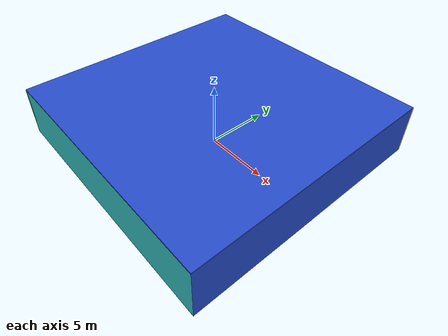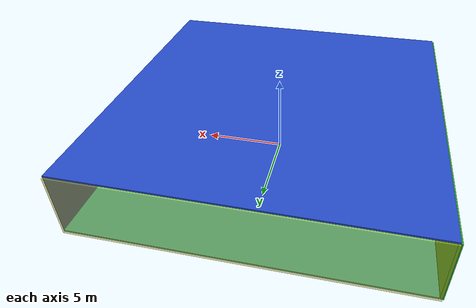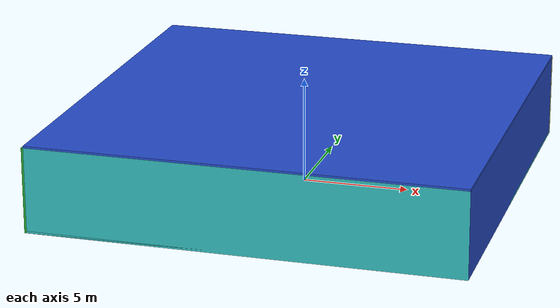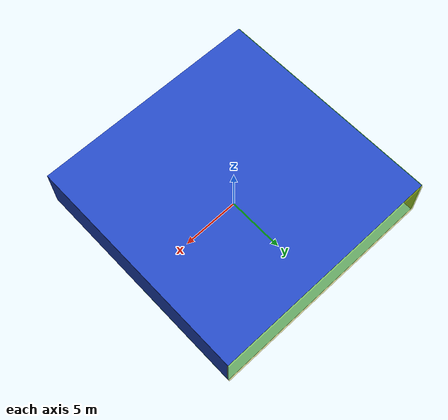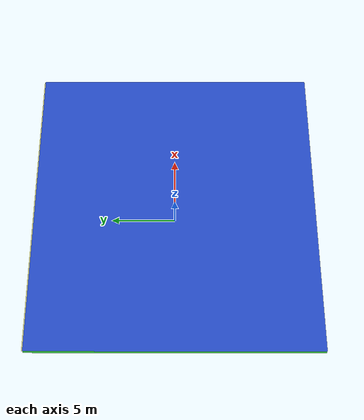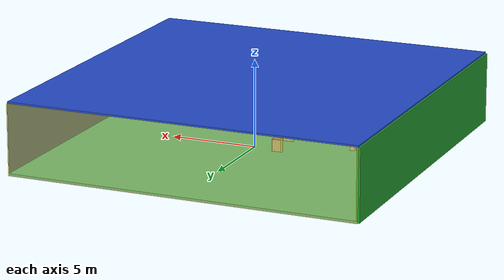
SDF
<sdf version="1.4">
 <world name="default">
  <physics type="ode">
   <max_step_size>0.001</max_step_size>
   <real_time_factor>1</real_time_factor>
   <real_time_update_rate>1000</real_time_update_rate>
   <gravity>0 0 -9.8</gravity>
  </physics>
  <scene><ambient>0.4 0.4 0.4 1</ambient><background>0.7 0.7 0.7 1</background><shadows>1</shadows></scene>
  <model name="Surrounding">
   <static>1</static>
   <link name="Ceiling">
    <collision name="Ceiling_Collision"><geometry><box><size>20 20 0.1</size></box></geometry></collision>
    <visual name="Ceiling_Visual">
     <geometry><box><size>20 20 0.1</size></box></geometry>
     <material>
      <script><uri>file://media/materials/scripts/gazebo.material</uri><name>Gazebo/BlueGlow</name></script>
     </material>
    </visual>
    <pose>0 0 4.05 0 0 0</pose>
   </link>
   <link name="Wall_South">
    <collision name="Wall_South_Collision">
     <geometry><box><size>20 0 4</size></box></geometry>
     <pose>0 0 2 0 -0 0</pose>
    </collision>
    <visual name="Wall_South_Visual">
     <pose>0 0 2 0 -0 0</pose>
     <geometry><box><size>20 0 4</size></box></geometry>
     <material>
      <script>
       <uri>file://media/materials/scripts/gazebo.material</uri>
       <name>Gazebo/TurquoiseGlowOutline</name>
      </script>
     </material>
    </visual>
    <velocity_decay><linear>0</linear><angular>0</angular></velocity_decay>
    <pose>0 -10 0 0 -0 0</pose>
   </link>
   <link name="Wall_East">
    <collision name="Wall_21_Collision">
     <geometry><box><size>20 0 4</size></box></geometry>
     <pose>0 0 2 0 -0 0</pose>
    </collision>
    <visual name="Wall_21_Visual">
     <pose>0 0 2 0 -0 0</pose>
     <geometry><box><size>20 0 4</size></box></geometry>
     <material>
      <script><uri>file://media/materials/scripts/gazebo.material</uri><name>Gazebo/BlueGlow</name></script>
     </material>
    </visual>
    <velocity_decay><linear>0</linear><angular>0</angular></velocity_decay>
    <pose>10 0 0 0 -0 1.5708</pose>
   </link>
   <link name="Wall_North">
    <collision name="Wall_22_Collision">
     <geometry><box><size>20 0.2 4</size></box></geometry>
     <pose>0 0 2 0 -0 0</pose>
    </collision>
    <visual name="Wall_22_Visual">
     <pose>0 0 2 0 -0 0</pose>
     <geometry><box><size>20 0.2 4</size></box></geometry>
     <material>
      <script>
       <uri>file://media/materials/scripts/gazebo.material</uri>
       <name>Gazebo/YellowTransparent</name>
      </script>
     </material>
    </visual>
    <velocity_decay><linear>0</linear><angular>0</angular></velocity_decay>
    <pose>0 10 0 0 -0 0</pose>
   </link>
   <link name="Wall_West">
    <collision name="Wall_23_Collision">
     <geometry><box><size>20 0.2 4</size></box></geometry>
     <pose>0 0 2 0 -0 0</pose>
    </collision>
    <visual name="Wall_23_Visual">
     <pose>0 0 2 0 -0 0</pose>
     <geometry><box><size>20 0.2 4</size></box></geometry>
     <material>
      <script><uri>file://media/materials/scripts/gazebo.material</uri><name>Gazebo/GreenGlow</name></script>
     </material>
    </visual>
    <velocity_decay><linear>0</linear><angular>0</angular></velocity_decay>
    <pose>-10 0 0 0 0 -1.5708</pose>
   </link>
   <link name="Ground_link">
    <collision name="collision">
     <pose>0 0 .05 0 -0 0</pose>
     <geometry><box><size>20 20 0.1</size></box></geometry>
    </collision>
    <visual name="visual">
     <pose>0 0 .05 0 -0 0</pose>
     <geometry><box><size>20 20 0.1</size></box></geometry>
     <material>
      <script><uri>file://media/materials/scripts/gazebo.material</uri><name>Gazebo/Turquoise</name></script>
     </material>
    </visual>
   </link>
   <static>1</static>
  </model>
  <spherical_coordinates>
   <surface_model>EARTH_WGS84</surface_model>
   <latitude_deg>0</latitude_deg>
   <longitude_deg>0</longitude_deg>
   <elevation>0</elevation>
   <heading_deg>0</heading_deg>
  </spherical_coordinates>
  <light name="lightball_0" type="diffuse">
   <diffuse>0.8 0.8 0.8 1</diffuse>
   <specular>0.2 0.2 0.2 1</specular>
   <attenuation>
    <range>100</range>
    <constant>0.7</constant>
    <linear>0.01</linear>
    <quadratic>0.001</quadratic>
   </attenuation>
   <direction>-0.5 0.1 -0.9</direction>
   <pose>6.34391472494 8.27093571891 2.82880722693 0 0 0</pose>
  </light>
  <light name="lightball_1" type="diffuse">
   <diffuse>0.8 0.8 0.8 1</diffuse>
   <specular>0.2 0.2 0.2 1</specular>
   <attenuation>
    <range>100</range>
    <constant>0.7</constant>
    <linear>0.01</linear>
    <quadratic>0.001</quadratic>
   </attenuation>
   <direction>-0.5 0.1 -0.9</direction>
   <pose>-7.34876767625 -7.62619889034 1.06553819463 0 0 0</pose>
  </light>
  <light name="lightball_2" type="diffuse">
   <diffuse>0.8 0.8 0.8 1</diffuse>
   <specular>0.2 0.2 0.2 1</specular>
   <attenuation>
    <range>100</range>
    <constant>0.7</constant>
    <linear>0.01</linear>
    <quadratic>0.001</quadratic>
   </attenuation>
   <direction>-0.5 0.1 -0.9</direction>
   <pose>-9.74209585514 -4.44565504313 1.88647189862 0 0 0</pose>
  </light>
  <light name="lightball_3" type="diffuse">
   <diffuse>0.8 0.8 0.8 1</diffuse>
   <specular>0.2 0.2 0.2 1</specular>
   <attenuation>
    <range>100</range>
    <constant>0.7</constant>
    <linear>0.01</linear>
    <quadratic>0.001</quadratic>
   </attenuation>
   <direction>-0.5 0.1 -0.9</direction>
   <pose>8.98174983878 9.10160018166 3.23758746887 0 0 0</pose>
  </light>
  <light name="lightball_4" type="diffuse">
   <diffuse>0.8 0.8 0.8 1</diffuse>
   <specular>0.2 0.2 0.2 1</specular>
   <attenuation>
    <range>100</range>
    <constant>0.7</constant>
    <linear>0.01</linear>
    <quadratic>0.001</quadratic>
   </attenuation>
   <direction>-0.5 0.1 -0.9</direction>
   <pose>5.77743911421 -1.53146896027 3.63089635643 0 0 0</pose>
  </light>
  <light name="lightball_5" type="diffuse">
   <diffuse>0.8 0.8 0.8 1</diffuse>
   <specular>0.2 0.2 0.2 1</specular>
   <attenuation>
    <range>100</range>
    <constant>0.7</constant>
    <linear>0.01</linear>
    <quadratic>0.001</quadratic>
   </attenuation>
   <direction>-0.5 0.1 -0.9</direction>
   <pose>9.2697729508 8.55084556542 1.3410465638 0 0 0</pose>
  </light>
  <light name="lightball_6" type="diffuse">
   <diffuse>0.8 0.8 0.8 1</diffuse>
   <specular>0.2 0.2 0.2 1</specular>
   <attenuation>
    <range>100</range>
    <constant>0.7</constant>
    <linear>0.01</linear>
    <quadratic>0.001</quadratic>
   </attenuation>
   <direction>-0.5 0.1 -0.9</direction>
   <pose>-1.64631394259 6.63092863918 2.79906144781 0 0 0</pose>
  </light>
  <light name="lightball_7" type="diffuse">
   <diffuse>0.8 0.8 0.8 1</diffuse>
   <specular>0.2 0.2 0.2 1</specular>
   <attenuation>
    <range>100</range>
    <constant>0.7</constant>
    <linear>0.01</linear>
    <quadratic>0.001</quadratic>
   </attenuation>
   <direction>-0.5 0.1 -0.9</direction>
   <pose>6.89629693482 2.94255148649 1.58427880881 0 0 0</pose>
  </light>
  <light name="lightball_8" type="diffuse">
   <diffuse>0.8 0.8 0.8 1</diffuse>
   <specular>0.2 0.2 0.2 1</specular>
   <attenuation>
    <range>100</range>
    <constant>0.7</constant>
    <linear>0.01</linear>
    <quadratic>0.001</quadratic>
   </attenuation>
   <direction>-0.5 0.1 -0.9</direction>
   <pose>3.95143931631 4.96816089908 1.49019741667 0 0 0</pose>
  </light>
  <light name="lightball_9" type="diffuse">
   <diffuse>0.8 0.8 0.8 1</diffuse>
   <specular>0.2 0.2 0.2 1</specular>
   <attenuation>
    <range>100</range>
    <constant>0.7</constant>
    <linear>0.01</linear>
    <quadratic>0.001</quadratic>
   </attenuation>
   <direction>-0.5 0.1 -0.9</direction>
   <pose>1.40040023079 1.53904713322 3.51827796593 0 0 0</pose>
  </light>
  <light name="lightball_10" type="diffuse">
   <diffuse>0.8 0.8 0.8 1</diffuse>
   <specular>0.2 0.2 0.2 1</specular>
   <attenuation>
    <range>100</range>
    <constant>0.7</constant>
    <linear>0.01</linear>
    <quadratic>0.001</quadratic>
   </attenuation>
   <direction>-0.5 0.1 -0.9</direction>
   <pose>-5.17989769867 8.92327914035 2.96661787502 0 0 0</pose>
  </light>
  <light name="lightball_11" type="diffuse">
   <diffuse>0.8 0.8 0.8 1</diffuse>
   <specular>0.2 0.2 0.2 1</specular>
   <attenuation>
    <range>100</range>
    <constant>0.7</constant>
    <linear>0.01</linear>
    <quadratic>0.001</quadratic>
   </attenuation>
   <direction>-0.5 0.1 -0.9</direction>
   <pose>7.17822816818 -6.32390626876 2.83237263963 0 0 0</pose>
  </light>
  <light name="lightball_12" type="diffuse">
   <diffuse>0.8 0.8 0.8 1</diffuse>
   <specular>0.2 0.2 0.2 1</specular>
   <attenuation>
    <range>100</range>
    <constant>0.7</constant>
    <linear>0.01</linear>
    <quadratic>0.001</quadratic>
   </attenuation>
   <direction>-0.5 0.1 -0.9</direction>
   <pose>0.0141398328778 -0.157445663266 2.4898354116 0 0 0</pose>
  </light>
  <include>
   <uri>model://construction_cone</uri>
   <pose>-5.27850653833 -1.39453810345 0 0 0 2.11663220228</pose>
  </include>
  <include><uri>model://table</uri><pose>-0.831347415805 -6.69346669333 0 0 0 0.923821656854</pose></include>
  <include>
   <uri>model://robocup_3Dsim_goal</uri>
   <pose>-1.73740552214 -0.466183952985 0 0 0 0.0968473771739</pose>
  </include>
  <include><uri>model://cabinet</uri><pose>0.818372021451 -6.42241802822 0 0 0 0.343578614964</pose></include>
 </world>
</sdf>

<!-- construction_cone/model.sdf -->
<sdf version="1.5">
  <model name="Construction Cone">
    <link name="link">
      <collision name="collision">
        <geometry>
          <mesh>
            <scale>10 10 10</scale>
            <uri>file://isr-testbed/construction_cone/meshes/construction_cone.dae</uri>
          </mesh>
        </geometry>
      </collision>
      <visual name="visual">
        <geometry>
          <mesh>
            <scale>10 10 10</scale>
            <uri>file://isr-testbed/construction_cone/meshes/construction_cone.dae</uri>
          </mesh>
        </geometry>
      </visual>
    </link>
  </model>
</sdf>

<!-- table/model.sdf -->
<sdf version="1.5">
  <model name="table">
    <static>true</static>
    <link name="link">
      <collision name="surface">
        <pose>0 0 1.0 0 0 0</pose>
        <geometry>
          <box>
            <size>1.5 0.8 0.03</size>
          </box>
        </geometry>
        <surface>
          <friction>
            <ode>
              <mu>0.6</mu>
              <mu2>0.6</mu2>
            </ode>
          </friction>
        </surface>
      </collision>
      <visual name="visual1">
        <pose>0 0 1.0 0 0 0</pose>
        <geometry>
          <box>
            <size>1.5 0.8 0.03</size>
          </box>
        </geometry>
        <material>
          <script>
            <uri>model://media/materials/scripts/gazebo.material</uri>
            <name>Gazebo/Wood</name>
          </script>
        </material>
      </visual>
      <collision name="front_left_leg">
        <pose>0.68 0.38 0.5 0 0 0</pose>
        <geometry>
          <cylinder>
            <radius>0.02</radius>
            <length>1.0</length>
          </cylinder>
        </geometry>
      </collision>
      <visual name="front_left_leg">
        <pose>0.68 0.38 0.5 0 0 0</pose>
        <geometry>
          <cylinder>
            <radius>0.02</radius>
            <length>1.0</length>
          </cylinder>
        </geometry>
        <material>
          <script>
            <uri>model://media/materials/scripts/gazebo.material</uri>
            <name>Gazebo/Grey</name>
          </script>
        </material>
      </visual>
      <collision name="front_right_leg">
        <pose>0.68 -0.38 0.5 0 0 0</pose>
        <geometry>
          <cylinder>
            <radius>0.02</radius>
            <length>1.0</length>
          </cylinder>
        </geometry>
      </collision>
      <visual name="front_right_leg">
        <pose>0.68 -0.38 0.5 0 0 0</pose>
        <geometry>
          <cylinder>
            <radius>0.02</radius>
            <length>1.0</length>
          </cylinder>
        </geometry>
        <material>
          <script>
            <uri>model://media/materials/scripts/gazebo.material</uri>
            <name>Gazebo/Grey</name>
          </script>
        </material>
      </visual>
      <collision name="back_right_leg">
        <pose>-0.68 -0.38 0.5 0 0 0</pose>
        <geometry>
          <cylinder>
            <radius>0.02</radius>
            <length>1.0</length>
          </cylinder>
        </geometry>
      </collision>
      <visual name="back_right_leg">
        <pose>-0.68 -0.38 0.5 0 0 0</pose>
        <geometry>
          <cylinder>
            <radius>0.02</radius>
            <length>1.0</length>
          </cylinder>
        </geometry>
        <material>
          <script>
            <uri>model://media/materials/scripts/gazebo.material</uri>
            <name>Gazebo/Grey</name>
          </script>
        </material>
      </visual>
      <collision name="back_left_leg">
        <pose>-0.68 0.38 0.5 0 0 0</pose>
        <geometry>
          <cylinder>
            <radius>0.02</radius>
            <length>1.0</length>
          </cylinder>
        </geometry>
      </collision>
      <visual name="back_left_leg">
        <pose>-0.68 0.38 0.5 0 0 0</pose>
        <geometry>
          <cylinder>
            <radius>0.02</radius>
            <length>1.0</length>
          </cylinder>
        </geometry>
        <material>
          <script>
            <uri>model://media/materials/scripts/gazebo.material</uri>
            <name>Gazebo/Grey</name>
          </script>
        </material>
      </visual>
    </link>
  </model>
</sdf>

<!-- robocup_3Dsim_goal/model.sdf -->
<sdf version="1.5">
  <model name="robocup_3d_goal">
    <static>true</static>
    <link name="left_post">
      <pose>0 1.05 0.45 0 0 0</pose>
      <collision name="collision">
        <geometry>
          <cylinder>
            <radius>0.05</radius>
            <length>0.9</length>
          </cylinder>
        </geometry>
      </collision>
      <visual name="visual">
        <geometry>
          <cylinder>
            <radius>0.05</radius>
            <length>0.9</length>
          </cylinder>
        </geometry>
        <material>
          <script>
            <uri>file://media/materials/scripts/gazebo.material</uri>
            <name>Gazebo/ZincYellow</name>
          </script>
        </material>
      </visual>
    </link>
    <link name="left_support_horiz_lower">
      <pose>0.30 1.05 0.01 0 0 0</pose>
      <collision name="collision">
        <geometry>
          <box>
            <size>0.50 0.02 0.02</size>
          </box>
        </geometry>
      </collision>
      <visual name="visual">
        <geometry>
          <box>
            <size>0.50 0.02 0.02</size>
          </box>
        </geometry>
        <material>
          <script>
            <uri>file://media/materials/scripts/gazebo.material</uri>
            <name>Gazebo/White</name>
          </script>
        </material>
      </visual>
    </link>
    <link name="left_support_horiz_upper">
      <pose>0.30 1.05 0.79 0 0 0</pose>
      <collision name="collision">
        <geometry>
          <box>
            <size>0.50 0.02 0.02</size>
          </box>
        </geometry>
      </collision>
      <visual name="visual">
        <geometry>
          <box>
            <size>0.50 0.02 0.02</size>
          </box>
        </geometry>
        <material>
          <script>
            <uri>file://media/materials/scripts/gazebo.material</uri>
            <name>Gazebo/White</name>
          </script>
        </material>
      </visual>
    </link>
    <link name="left_support_vertical">
      <pose>0.56 1.05 0.4 0 1.5708 0</pose>
      <collision name="collision">
        <geometry>
          <box>
            <size>0.80 0.02 0.02</size>
          </box>
        </geometry>
      </collision>
      <visual name="visual">
        <geometry>
          <box>
            <size>0.80 0.02 0.02</size>
          </box>
        </geometry>
        <material>
          <script>
            <uri>file://media/materials/scripts/gazebo.material</uri>
            <name>Gazebo/White</name>
          </script>
        </material>
      </visual>
    </link>
    <link name="right_support_horiz_lower">
      <pose>0.30 -1.05 0.01 0 0 0</pose>
      <collision name="collision">
        <geometry>
          <box>
            <size>0.50 0.02 0.02</size>
          </box>
        </geometry>
      </collision>
      <visual name="visual">
        <geometry>
          <box>
            <size>0.50 0.02 0.02</size>
          </box>
        </geometry>
        <material>
          <script>
            <uri>file://media/materials/scripts/gazebo.material</uri>
            <name>Gazebo/White</name>
          </script>
        </material>
      </visual>
    </link>
    <link name="right_support_horiz_upper">
      <pose>0.30 -1.05 0.79 0 0 0</pose>
      <collision name="collision">
        <geometry>
          <box>
            <size>0.50 0.02 0.02</size>
          </box>
        </geometry>
      </collision>
      <visual name="visual">
        <geometry>
          <box>
            <size>0.50 0.02 0.02</size>
          </box>
        </geometry>
        <material>
          <script>
            <uri>file://media/materials/scripts/gazebo.material</uri>
            <name>Gazebo/White</name>
          </script>
        </material>
      </visual>
    </link>
    <link name="right_support_vertical">
      <pose>0.56 -1.05 0.4 0 1.5708 0</pose>
      <collision name="collision">
        <geometry>
          <box>
            <size>0.80 0.02 0.02</size>
          </box>
        </geometry>
      </collision>
      <visual name="visual">
        <geometry>
          <box>
            <size>0.80 0.02 0.02</size>
          </box>
        </geometry>
        <material>
          <script>
            <uri>file://media/materials/scripts/gazebo.material</uri>
            <name>Gazebo/White</name>
          </script>
        </material>
      </visual>
    </link>
    <link name="center_support_horiz_lower">
      <pose>0.56 0 0.01 0 1.5708 0</pose>
      <collision name="collision">
        <geometry>
          <box>
            <size>0.02 2.08 0.02</size>
          </box>
        </geometry>
      </collision>
      <visual name="visual">
        <geometry>
          <box>
            <size>0.02 2.08 0.02</size>
          </box>
        </geometry>
        <material>
          <script>
            <uri>file://media/materials/scripts/gazebo.material</uri>
            <name>Gazebo/White</name>
          </script>
        </material>
      </visual>
    </link>
    <link name="center_support_horiz_upper">
      <pose>0.56 0 0.79 0 1.5708 0</pose>
      <collision name="collision">
        <geometry>
          <box>
            <size>0.02 2.08 0.02</size>
          </box>
        </geometry>
      </collision>
      <visual name="visual">
        <geometry>
          <box>
            <size>0.02 2.08 0.02</size>
          </box>
        </geometry>
        <material>
          <script>
            <uri>file://media/materials/scripts/gazebo.material</uri>
            <name>Gazebo/White</name>
          </script>
        </material>
      </visual>
    </link>
    <link name="right_post">
      <pose>0 -1.05 0.45 0 0 0</pose>
      <collision name="collision">
        <geometry>
          <cylinder>
            <radius>0.05</radius>
            <length>0.9</length>
          </cylinder>
        </geometry>
      </collision>
      <visual name="visual">
        <geometry>
          <cylinder>
            <radius>0.05</radius>
            <length>0.9</length>
          </cylinder>
        </geometry>
        <material>
          <script>
            <uri>file://media/materials/scripts/gazebo.material</uri>
            <name>Gazebo/ZincYellow</name>
          </script>
        </material>
      </visual>
    </link>
    <link name="crossbar">
      <pose>0 0 0.85 1.57 1.57 0</pose>
      <collision name="collision">
        <geometry>
          <cylinder>
            <radius>0.05</radius>
            <length>2.0</length>
          </cylinder>
        </geometry>
      </collision>
      <visual name="visual">
        <geometry>
          <cylinder>
            <radius>0.05</radius>
            <length>2.0</length>
          </cylinder>
        </geometry>
        <material>
          <script>
            <uri>file://media/materials/scripts/gazebo.material</uri>
            <name>Gazebo/ZincYellow</name>
          </script>
        </material>
      </visual>
    </link>
    <link name="center_net">
      <pose>0.56 0 0.40 0 0 0</pose>
      <collision name="collision">
        <geometry>
          <box>
            <size>0.01 2.1 0.80</size>
          </box>
        </geometry>
      </collision>
      <visual name="visual">
        <geometry>
          <box>
            <size>0.01 2.1 0.80</size>
          </box>
        </geometry>
        <material>
          <script>
            <uri>model://../model_source/models/robocup09_spl_field/materials/scripts/</uri>
            <uri>model://../model_source/models/robocup09_spl_field/materials/textures/</uri>
            <name>RoboCup/Net</name>
          </script>
        </material>
      </visual>
    </link>
    <link name="left_net">
      <pose>0.30 1.05 0.40 0 0 0</pose>
      <collision name="collision">
        <geometry>
          <box>
            <size>0.50 0.01 0.76</size>
          </box>
        </geometry>
      </collision>
      <visual name="visual">
        <geometry>
          <box>
            <size>0.50 0.01 0.76</size>
          </box>
        </geometry>
        <material>
          <script>
            <uri>model://../model_source/models/robocup09_spl_field/materials/scripts/</uri>
            <uri>model://../model_source/models/robocup09_spl_field/materials/textures/</uri>
            <name>RoboCup/Net</name>
          </script>
        </material>
      </visual>
    </link>
    <link name="right_net">
      <pose>0.30 -1.05 0.40 0 0 0</pose>
      <collision name="collision">
        <geometry>
          <box>
            <size>0.50 0.01 0.76</size>
          </box>
        </geometry>
      </collision>
      <visual name="visual">
        <geometry>
          <box>
            <size>0.50 0.01 0.76</size>
          </box>
        </geometry>
        <material>
          <script>
            <uri>model://../model_source/models/robocup09_spl_field/materials/scripts/</uri>
            <uri>model://../model_source/models/robocup09_spl_field/materials/textures/</uri>
            <name>RoboCup/Net</name>
          </script>
        </material>
      </visual>
    </link>
  </model>
</sdf>

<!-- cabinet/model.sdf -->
<sdf version="1.5">
  <model name="cabinet">
    <static>true</static>
    <link name="cabinet_bottom_plate">
      <inertial>
        <pose>0 0 -1 0 0 0</pose>
        <inertia>
          <ixx>2.050000</ixx>
          <ixy>0</ixy>
          <ixz>0</ixz>
          <iyy>2.050000</iyy>
          <iyz>0</iyz>
          <izz>2.050000</izz>
        </inertia>
        <mass>25.000000</mass>
      </inertial>
      <collision name="cabinet_bottom_plate_geom">
        <pose>0 0 0.010000 0 0 0</pose>
        <geometry>
          <box>
            <size>0.450000 0.450000 0.020000</size>
          </box>
        </geometry>
      </collision>
      <visual name="cabinet_bottom_plate_geom_visual">
        <pose>0 0 0.010000 0 0 0</pose>
        <geometry>
          <box>
            <size>0.450000 0.450000 0.020000</size>
          </box>
        </geometry>
        <material>
          <script>
            <uri>model://media/materials/scripts/gazebo.material</uri>
            <name>Gazebo/Wood</name>
          </script>
        </material>
      </visual>
      <collision name="cabinet_bottom_plate_geom_cabinet_back_plate">
        <pose>0.235000 0 0.510000 0 0 0</pose>
        <geometry>
          <box>
            <size>0.020000 0.450000 1.020000</size>
          </box>
        </geometry>
      </collision>
      <visual name="cabinet_bottom_plate_geom_cabinet_back_plate_visual">
        <pose>0.235000 0 0.510000 0 0 0</pose>
        <geometry>
          <box>
            <size>0.020000 0.450000 1.020000</size>
          </box>
        </geometry>
        <material>
          <script>
            <uri>model://media/materials/scripts/gazebo.material</uri>
            <name>Gazebo/Wood</name>
          </script>
        </material>
      </visual>
      <collision name="cabinet_bottom_plate_geom_cabinet_left_plate">
        <pose>0 0.235000 0.510000 0 0 0</pose>
        <geometry>
          <box>
            <size>0.450000 0.020000 1.020000</size>
          </box>
        </geometry>
      </collision>
      <visual name="cabinet_bottom_plate_geom_cabinet_left_plate_visual">
        <pose>0 0.235000 0.510000 0 0 0</pose>
        <geometry>
          <box>
            <size>0.450000 0.020000 1.020000</size>
          </box>
        </geometry>
        <material>
          <script>
            <uri>model://media/materials/scripts/gazebo.material</uri>
            <name>Gazebo/Wood</name>
          </script>
        </material>
      </visual>
      <collision name="cabinet_bottom_plate_geom_cabinet_middle_plate">
        <pose>0 0 0.510000 0 0 0</pose>
        <geometry>
          <box>
            <size>0.450000 0.450000 0.020000</size>
          </box>
        </geometry>
      </collision>
      <visual name="cabinet_bottom_plate_geom_cabinet_middle_plate_visual">
        <pose>0 0 0.510000 0 0 0</pose>
        <geometry>
          <box>
            <size>0.450000 0.450000 0.020000</size>
          </box>
        </geometry>
        <material>
          <script>
            <uri>model://media/materials/scripts/gazebo.material</uri>
            <name>Gazebo/Wood</name>
          </script>
        </material>
      </visual>
      <collision name="cabinet_bottom_plate_geom_cabinet_right_plate">
        <pose>0 -0.235000 0.510000 0 0 0</pose>
        <geometry>
          <box>
            <size>0.450000 0.020000 1.020000</size>
          </box>
        </geometry>
      </collision>
      <visual name="cabinet_bottom_plate_geom_cabinet_right_plate_visual">
        <pose>0 -0.235000 0.510000 0 0 0</pose>
        <geometry>
          <box>
            <size>0.450000 0.020000 1.020000</size>
          </box>
        </geometry>
        <material>
          <script>
            <uri>model://media/materials/scripts/gazebo.material</uri>
            <name>Gazebo/Wood</name>
          </script>
        </material>
      </visual>
      <collision name="cabinet_bottom_plate_geom_cabinet_top_plate">
        <pose>0 0 1.010000 0 0 0</pose>
        <geometry>
          <box>
            <size>0.450000 0.450000 0.020000</size>
          </box>
        </geometry>
      </collision>
      <visual name="cabinet_bottom_plate_geom_cabinet_top_plate_visual">
        <pose>0 0 1.010000 0 0 0</pose>
        <geometry>
          <box>
            <size>0.450000 0.450000 0.020000</size>
          </box>
        </geometry>
        <material>
          <script>
            <uri>model://media/materials/scripts/gazebo.material</uri>
            <name>Gazebo/Wood</name>
          </script>
        </material>
      </visual>
    </link>
  </model>
</sdf>
